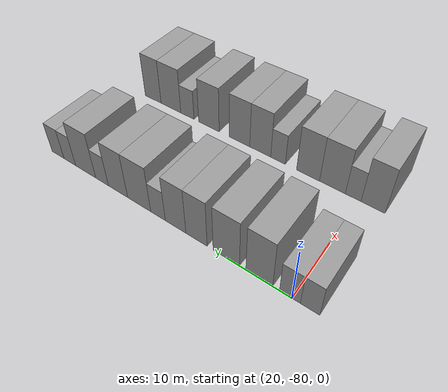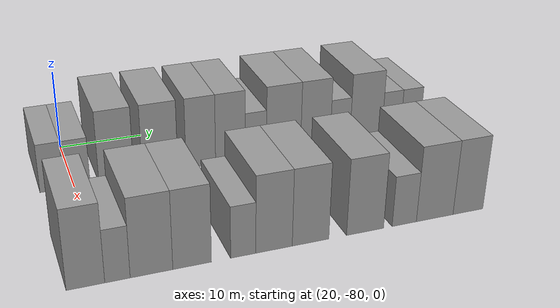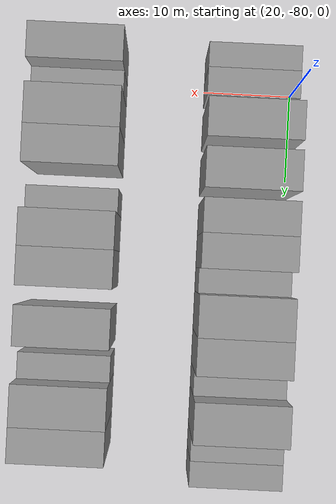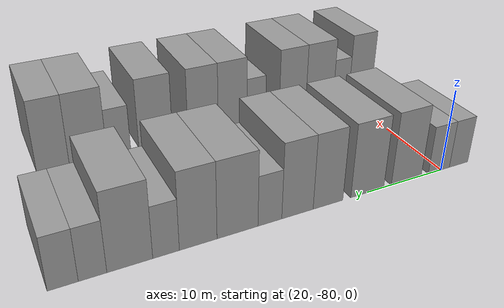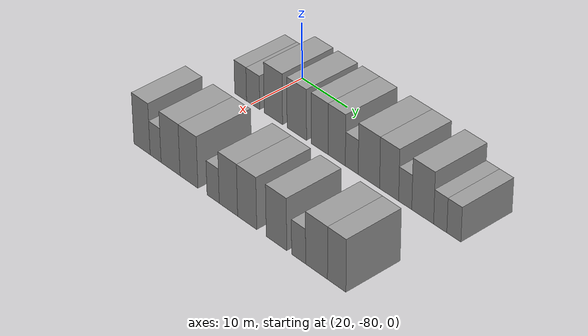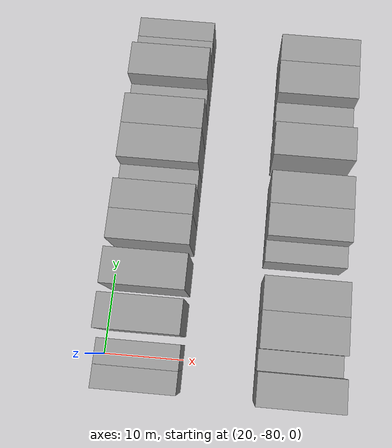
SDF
<sdf version="1.6">
 <world name="default">
  <model name="building_24">
   <static>1</static>
   <pose>25.0000 -82.5072 0 0.000000 0.000000 0.000000</pose>
   <link name="link">
    <pose>0 0 3.00 0 0 0</pose>
    <collision name="collision"><geometry><box><size>10.0000 2.6864 6.0000</size></box></geometry></collision>
    <visual name="visual">
     <cast_shadows>0</cast_shadows>
     <geometry><box><size>10.0000 2.6864 6.0000</size></box></geometry>
     <material>
      <script>
       <uri>model://grey_wall/materials/scripts</uri>
       <uri>model://grey_wall/materials/textures</uri>
       <name>vrc/grey_wall</name>
      </script>
     </material>
    </visual>
   </link>
  </model>
  <model name="building_25">
   <static>1</static>
   <pose>25.0000 -79.6708 0 0.000000 0.000000 0.000000</pose>
   <link name="link">
    <pose>0 0 3.00 0 0 0</pose>
    <collision name="collision"><geometry><box><size>10.0000 2.9863 6.0000</size></box></geometry></collision>
    <visual name="visual">
     <cast_shadows>0</cast_shadows>
     <geometry><box><size>10.0000 2.9863 6.0000</size></box></geometry>
     <material>
      <script>
       <uri>model://grey_wall/materials/scripts</uri>
       <uri>model://grey_wall/materials/textures</uri>
       <name>vrc/grey_wall</name>
      </script>
     </material>
    </visual>
   </link>
  </model>
  <model name="building_26">
   <static>1</static>
   <pose>25.0000 -75.1414 0 0.000000 0.000000 0.000000</pose>
   <link name="link">
    <pose>0 0 4.50 0 0 0</pose>
    <collision name="collision"><geometry><box><size>10.0000 4.0725 9.0000</size></box></geometry></collision>
    <visual name="visual">
     <cast_shadows>0</cast_shadows>
     <geometry><box><size>10.0000 4.0725 9.0000</size></box></geometry>
     <material>
      <script>
       <uri>model://grey_wall/materials/scripts</uri>
       <uri>model://grey_wall/materials/textures</uri>
       <name>vrc/grey_wall</name>
      </script>
     </material>
    </visual>
   </link>
  </model>
  <model name="building_27">
   <static>1</static>
   <pose>25.0000 -69.9814 0 0.000000 0.000000 0.000000</pose>
   <link name="link">
    <pose>0 0 4.50 0 0 0</pose>
    <collision name="collision"><geometry><box><size>10.0000 4.2475 9.0000</size></box></geometry></collision>
    <visual name="visual">
     <cast_shadows>0</cast_shadows>
     <geometry><box><size>10.0000 4.2475 9.0000</size></box></geometry>
     <material>
      <script>
       <uri>model://grey_wall/materials/scripts</uri>
       <uri>model://grey_wall/materials/textures</uri>
       <name>vrc/grey_wall</name>
      </script>
     </material>
    </visual>
   </link>
  </model>
  <model name="building_28">
   <static>1</static>
   <pose>25.0000 -65.0414 0 0.000000 0.000000 0.000000</pose>
   <link name="link">
    <pose>0 0 4.50 0 0 0</pose>
    <collision name="collision"><geometry><box><size>10.0000 3.6324 9.0000</size></box></geometry></collision>
    <visual name="visual">
     <cast_shadows>0</cast_shadows>
     <geometry><box><size>10.0000 3.6324 9.0000</size></box></geometry>
     <material>
      <script>
       <uri>model://grey_wall/materials/scripts</uri>
       <uri>model://grey_wall/materials/textures</uri>
       <name>vrc/grey_wall</name>
      </script>
     </material>
    </visual>
   </link>
  </model>
  <model name="building_29">
   <static>1</static>
   <pose>25.0000 -61.3847 0 0.000000 0.000000 0.000000</pose>
   <link name="link">
    <pose>0 0 4.50 0 0 0</pose>
    <collision name="collision"><geometry><box><size>10.0000 3.6810 9.0000</size></box></geometry></collision>
    <visual name="visual">
     <cast_shadows>0</cast_shadows>
     <geometry><box><size>10.0000 3.6810 9.0000</size></box></geometry>
     <material>
      <script>
       <uri>model://grey_wall/materials/scripts</uri>
       <uri>model://grey_wall/materials/textures</uri>
       <name>vrc/grey_wall</name>
      </script>
     </material>
    </visual>
   </link>
  </model>
  <model name="building_30">
   <static>1</static>
   <pose>25.0000 -58.1936 0 0.000000 0.000000 0.000000</pose>
   <link name="link">
    <pose>0 0 3.00 0 0 0</pose>
    <collision name="collision"><geometry><box><size>10.0000 2.7013 6.0000</size></box></geometry></collision>
    <visual name="visual">
     <cast_shadows>0</cast_shadows>
     <geometry><box><size>10.0000 2.7013 6.0000</size></box></geometry>
     <material>
      <script>
       <uri>model://grey_wall/materials/scripts</uri>
       <uri>model://grey_wall/materials/textures</uri>
       <name>vrc/grey_wall</name>
      </script>
     </material>
    </visual>
   </link>
  </model>
  <model name="building_31">
   <static>1</static>
   <pose>25.0000 -54.6182 0 0.000000 0.000000 0.000000</pose>
   <link name="link">
    <pose>0 0 4.50 0 0 0</pose>
    <collision name="collision"><geometry><box><size>10.0000 4.4496 9.0000</size></box></geometry></collision>
    <visual name="visual">
     <cast_shadows>0</cast_shadows>
     <geometry><box><size>10.0000 4.4496 9.0000</size></box></geometry>
     <material>
      <script>
       <uri>model://grey_wall/materials/scripts</uri>
       <uri>model://grey_wall/materials/textures</uri>
       <name>vrc/grey_wall</name>
      </script>
     </material>
    </visual>
   </link>
  </model>
  <model name="building_32">
   <static>1</static>
   <pose>25.0000 -50.4423 0 0.000000 0.000000 0.000000</pose>
   <link name="link">
    <pose>0 0 4.50 0 0 0</pose>
    <collision name="collision"><geometry><box><size>10.0000 3.9020 9.0000</size></box></geometry></collision>
    <visual name="visual">
     <cast_shadows>0</cast_shadows>
     <geometry><box><size>10.0000 3.9020 9.0000</size></box></geometry>
     <material>
      <script>
       <uri>model://grey_wall/materials/scripts</uri>
       <uri>model://grey_wall/materials/textures</uri>
       <name>vrc/grey_wall</name>
      </script>
     </material>
    </visual>
   </link>
  </model>
  <model name="building_33">
   <static>1</static>
   <pose>25.0000 -47.1648 0 0.000000 0.000000 0.000000</pose>
   <link name="link">
    <pose>0 0 3.00 0 0 0</pose>
    <collision name="collision"><geometry><box><size>10.0000 2.6529 6.0000</size></box></geometry></collision>
    <visual name="visual">
     <cast_shadows>0</cast_shadows>
     <geometry><box><size>10.0000 2.6529 6.0000</size></box></geometry>
     <material>
      <script>
       <uri>model://grey_wall/materials/scripts</uri>
       <uri>model://grey_wall/materials/textures</uri>
       <name>vrc/grey_wall</name>
      </script>
     </material>
    </visual>
   </link>
  </model>
  <model name="building_34">
   <static>1</static>
   <pose>25.0000 -43.6502 0 0.000000 0.000000 0.000000</pose>
   <link name="link">
    <pose>0 0 4.50 0 0 0</pose>
    <collision name="collision"><geometry><box><size>10.0000 4.3764 9.0000</size></box></geometry></collision>
    <visual name="visual">
     <cast_shadows>0</cast_shadows>
     <geometry><box><size>10.0000 4.3764 9.0000</size></box></geometry>
     <material>
      <script>
       <uri>model://grey_wall/materials/scripts</uri>
       <uri>model://grey_wall/materials/textures</uri>
       <name>vrc/grey_wall</name>
      </script>
     </material>
    </visual>
   </link>
  </model>
  <model name="building_35">
   <static>1</static>
   <pose>25.0000 -40.1557 0 0.000000 0.000000 0.000000</pose>
   <link name="link">
    <pose>0 0 3.00 0 0 0</pose>
    <collision name="collision"><geometry><box><size>10.0000 2.6125 6.0000</size></box></geometry></collision>
    <visual name="visual">
     <cast_shadows>0</cast_shadows>
     <geometry><box><size>10.0000 2.6125 6.0000</size></box></geometry>
     <material>
      <script>
       <uri>model://grey_wall/materials/scripts</uri>
       <uri>model://grey_wall/materials/textures</uri>
       <name>vrc/grey_wall</name>
      </script>
     </material>
    </visual>
   </link>
  </model>
  <model name="building_36">
   <static>1</static>
   <pose>25.0000 -37.4683 0 0.000000 0.000000 0.000000</pose>
   <link name="link">
    <pose>0 0 3.00 0 0 0</pose>
    <collision name="collision"><geometry><box><size>10.0000 2.7624 6.0000</size></box></geometry></collision>
    <visual name="visual">
     <cast_shadows>0</cast_shadows>
     <geometry><box><size>10.0000 2.7624 6.0000</size></box></geometry>
     <material>
      <script>
       <uri>model://grey_wall/materials/scripts</uri>
       <uri>model://grey_wall/materials/textures</uri>
       <name>vrc/grey_wall</name>
      </script>
     </material>
    </visual>
   </link>
  </model>
  <model name="building_127">
   <static>1</static>
   <pose>44.0000 -82.1392 0 0.000000 0.000000 0.000000</pose>
   <link name="link">
    <pose>0 0 4.50 0 0 0</pose>
    <collision name="collision"><geometry><box><size>10.0000 3.7139 9.0000</size></box></geometry></collision>
    <visual name="visual">
     <cast_shadows>0</cast_shadows>
     <geometry><box><size>10.0000 3.7139 9.0000</size></box></geometry>
     <material>
      <script>
       <uri>model://grey_wall/materials/scripts</uri>
       <uri>model://grey_wall/materials/textures</uri>
       <name>vrc/grey_wall</name>
      </script>
     </material>
    </visual>
   </link>
  </model>
  <model name="building_128">
   <static>1</static>
   <pose>44.0000 -79.0399 0 0.000000 0.000000 0.000000</pose>
   <link name="link">
    <pose>0 0 3.00 0 0 0</pose>
    <collision name="collision"><geometry><box><size>10.0000 2.4846 6.0000</size></box></geometry></collision>
    <visual name="visual">
     <cast_shadows>0</cast_shadows>
     <geometry><box><size>10.0000 2.4846 6.0000</size></box></geometry>
     <material>
      <script>
       <uri>model://grey_wall/materials/scripts</uri>
       <uri>model://grey_wall/materials/textures</uri>
       <name>vrc/grey_wall</name>
      </script>
     </material>
    </visual>
   </link>
  </model>
  <model name="building_129">
   <static>1</static>
   <pose>44.0000 -75.6686 0 0.000000 0.000000 0.000000</pose>
   <link name="link">
    <pose>0 0 4.50 0 0 0</pose>
    <collision name="collision"><geometry><box><size>10.0000 4.2580 9.0000</size></box></geometry></collision>
    <visual name="visual">
     <cast_shadows>0</cast_shadows>
     <geometry><box><size>10.0000 4.2580 9.0000</size></box></geometry>
     <material>
      <script>
       <uri>model://grey_wall/materials/scripts</uri>
       <uri>model://grey_wall/materials/textures</uri>
       <name>vrc/grey_wall</name>
      </script>
     </material>
    </visual>
   </link>
  </model>
  <model name="building_130">
   <static>1</static>
   <pose>44.0000 -71.5595 0 0.000000 0.000000 0.000000</pose>
   <link name="link">
    <pose>0 0 4.50 0 0 0</pose>
    <collision name="collision"><geometry><box><size>10.0000 3.9604 9.0000</size></box></geometry></collision>
    <visual name="visual">
     <cast_shadows>0</cast_shadows>
     <geometry><box><size>10.0000 3.9604 9.0000</size></box></geometry>
     <material>
      <script>
       <uri>model://grey_wall/materials/scripts</uri>
       <uri>model://grey_wall/materials/textures</uri>
       <name>vrc/grey_wall</name>
      </script>
     </material>
    </visual>
   </link>
  </model>
  <model name="building_131">
   <static>1</static>
   <pose>44.0000 -66.2508 0 0.000000 0.000000 0.000000</pose>
   <link name="link">
    <pose>0 0 3.00 0 0 0</pose>
    <collision name="collision"><geometry><box><size>10.0000 2.6569 6.0000</size></box></geometry></collision>
    <visual name="visual">
     <cast_shadows>0</cast_shadows>
     <geometry><box><size>10.0000 2.6569 6.0000</size></box></geometry>
     <material>
      <script>
       <uri>model://grey_wall/materials/scripts</uri>
       <uri>model://grey_wall/materials/textures</uri>
       <name>vrc/grey_wall</name>
      </script>
     </material>
    </visual>
   </link>
  </model>
  <model name="building_132">
   <static>1</static>
   <pose>44.0000 -62.9458 0 0.000000 0.000000 0.000000</pose>
   <link name="link">
    <pose>0 0 4.50 0 0 0</pose>
    <collision name="collision"><geometry><box><size>10.0000 3.9531 9.0000</size></box></geometry></collision>
    <visual name="visual">
     <cast_shadows>0</cast_shadows>
     <geometry><box><size>10.0000 3.9531 9.0000</size></box></geometry>
     <material>
      <script>
       <uri>model://grey_wall/materials/scripts</uri>
       <uri>model://grey_wall/materials/textures</uri>
       <name>vrc/grey_wall</name>
      </script>
     </material>
    </visual>
   </link>
  </model>
  <model name="building_133">
   <static>1</static>
   <pose>44.0000 -58.9420 0 0.000000 0.000000 0.000000</pose>
   <link name="link">
    <pose>0 0 4.50 0 0 0</pose>
    <collision name="collision"><geometry><box><size>10.0000 4.0546 9.0000</size></box></geometry></collision>
    <visual name="visual">
     <cast_shadows>0</cast_shadows>
     <geometry><box><size>10.0000 4.0546 9.0000</size></box></geometry>
     <material>
      <script>
       <uri>model://grey_wall/materials/scripts</uri>
       <uri>model://grey_wall/materials/textures</uri>
       <name>vrc/grey_wall</name>
      </script>
     </material>
    </visual>
   </link>
  </model>
  <model name="building_134">
   <static>1</static>
   <pose>44.0000 -52.7858 0 0.000000 0.000000 0.000000</pose>
   <link name="link">
    <pose>0 0 4.50 0 0 0</pose>
    <collision name="collision"><geometry><box><size>10.0000 4.2578 9.0000</size></box></geometry></collision>
    <visual name="visual">
     <cast_shadows>0</cast_shadows>
     <geometry><box><size>10.0000 4.2578 9.0000</size></box></geometry>
     <material>
      <script>
       <uri>model://grey_wall/materials/scripts</uri>
       <uri>model://grey_wall/materials/textures</uri>
       <name>vrc/grey_wall</name>
      </script>
     </material>
    </visual>
   </link>
  </model>
  <model name="building_135">
   <static>1</static>
   <pose>44.0000 -48.2255 0 0.000000 0.000000 0.000000</pose>
   <link name="link">
    <pose>0 0 3.00 0 0 0</pose>
    <collision name="collision"><geometry><box><size>10.0000 2.8628 6.0000</size></box></geometry></collision>
    <visual name="visual">
     <cast_shadows>0</cast_shadows>
     <geometry><box><size>10.0000 2.8628 6.0000</size></box></geometry>
     <material>
      <script>
       <uri>model://grey_wall/materials/scripts</uri>
       <uri>model://grey_wall/materials/textures</uri>
       <name>vrc/grey_wall</name>
      </script>
     </material>
    </visual>
   </link>
  </model>
  <model name="building_136">
   <static>1</static>
   <pose>44.0000 -44.5847 0 0.000000 0.000000 0.000000</pose>
   <link name="link">
    <pose>0 0 4.50 0 0 0</pose>
    <collision name="collision"><geometry><box><size>10.0000 4.4187 9.0000</size></box></geometry></collision>
    <visual name="visual">
     <cast_shadows>0</cast_shadows>
     <geometry><box><size>10.0000 4.4187 9.0000</size></box></geometry>
     <material>
      <script>
       <uri>model://grey_wall/materials/scripts</uri>
       <uri>model://grey_wall/materials/textures</uri>
       <name>vrc/grey_wall</name>
      </script>
     </material>
    </visual>
   </link>
  </model>
  <model name="building_137">
   <static>1</static>
   <pose>44.0000 -40.5375 0 0.000000 0.000000 0.000000</pose>
   <link name="link">
    <pose>0 0 4.50 0 0 0</pose>
    <collision name="collision"><geometry><box><size>10.0000 3.6757 9.0000</size></box></geometry></collision>
    <visual name="visual">
     <cast_shadows>0</cast_shadows>
     <geometry><box><size>10.0000 3.6757 9.0000</size></box></geometry>
     <material>
      <script>
       <uri>model://grey_wall/materials/scripts</uri>
       <uri>model://grey_wall/materials/textures</uri>
       <name>vrc/grey_wall</name>
      </script>
     </material>
    </visual>
   </link>
  </model>
 </world>
</sdf>
